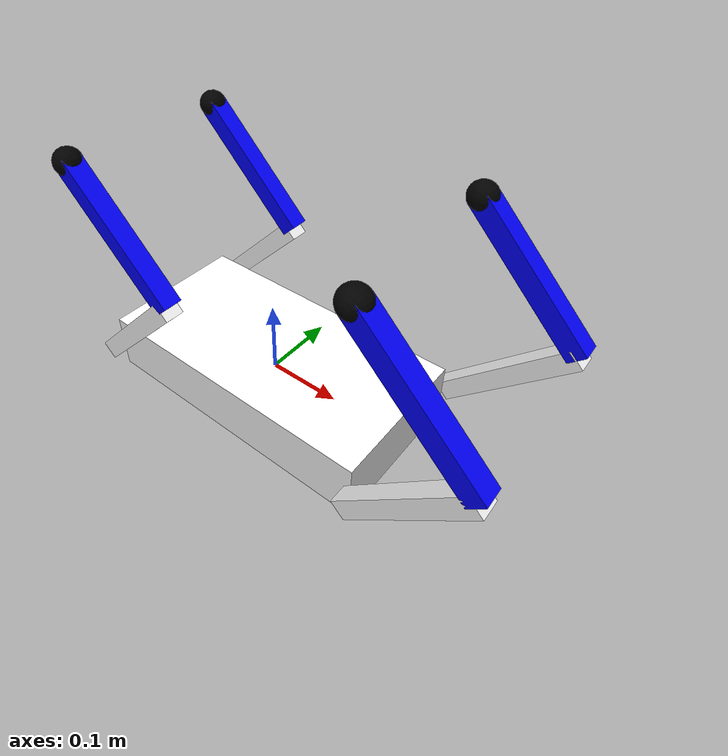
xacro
<?xml version="1.0"?>
<robot name="dog"
    xmlns:xacro="http://ros.org/wiki/xacro">

    <!-- Defining the colors used in this robot -->
    <material name="Black">
        <color rgba="0 0 0 1"/>
    </material>

    <material name="White">
        <color rgba="1 1 1 1"/>
    </material>

    <material name="Blue">
        <color rgba="0 0 1 1"/>
    </material>

    <material name="Red">
        <color rgba="1 0 0 1"/>
    </material>

    <!-- Constants -->
    <xacro:property name="M_PI" value="3.14159"/>

    <!-- body_link properties -->
    <xacro:property name="body_link_height" value="0.08" />
    <xacro:property name="body_link_width" value="0.2" />
    <xacro:property name="body_link_length" value="0.4" />
    <xacro:property name="body_h" value="0.4" />

    <!-- leg_calf properties -->
    <xacro:property name="calf_height" value="0.025" />
    <xacro:property name="calf_width" value="0.025" />
    <xacro:property name="calf_len" value="0.2" />

    <!-- leg_thigh properties -->
    <xacro:property name="thigh_height" value="0.025" />
    <xacro:property name="thigh_width" value="0.025" />
    <xacro:property name="thigh_len" value="0.2" />

    <!-- leg_shoulder properties -->
    <xacro:property name="shoulder_radius" value="0.05" />
    <xacro:property name="shoulder_len" value="0.05" />

    <!-- point_feet properties -->
    <xacro:property name="point_feet_radius" value="0.017675" />

    <!-- Gripper frame -->
    <xacro:property name="grasp_frame_radius" value="0.001" />

    <!-- Inertial matrix -->
    <xacro:macro name="inertial_matrix" params="mass">
        <inertial>
            <mass value="${mass}" />
            <inertia ixx="0.166667" ixy="0" ixz="0" iyy="0.166667" iyz="0" izz="0.166667"/>
        </inertial>
    </xacro:macro>

    <!-- base_link -->
    <link name="base_link">
        <visual>
            <origin xyz="0 0 0" rpy="0 0 0" />
            <geometry>
                <box size="${body_link_length/10} ${body_link_width/10} ${body_link_height/10}" />
            </geometry>
            <material name="White" />
        </visual>
    </link>

    <!-- body_link -->
    <link name="body_link">
        <visual>
            <origin xyz="0 0 0" rpy="0 0 0" />
            <geometry>
                <box size="${body_link_length} ${body_link_width} ${body_link_height}" />
            </geometry>
            <material name="White" />
        </visual>
        <collision>
            <origin xyz="0 0 0" rpy="0 0 0" />
            <geometry>
                <box size="${body_link_length} ${body_link_width} ${body_link_height}" />
            </geometry>
        </collision>
        <xacro:inertial_matrix mass="5" />
    </link>

    <!-- leg -->
    <xacro:macro name="leg" params="leg_name">
        <link name="${leg_name}_calf_link">
            <visual>
                <origin xyz="0 ${calf_len/2} 0" rpy="0 0 0" />
                <geometry>
                    <box size="${calf_width} ${calf_len} ${calf_height}" />
                </geometry>
                <material name="White" />
            </visual>
            <collision>
                <origin xyz="0 ${calf_len/2} 0" rpy="0 0 0" />
                <geometry>
                    <box size="${calf_width} ${calf_len} ${calf_height}" />
                </geometry>
            </collision>
            <xacro:inertial_matrix mass="0.5" />
        </link>

        <link name="${leg_name}_thigh_link">
            <visual>
                <origin xyz="0 ${thigh_len/2} 0" rpy="0 0 0" />
                <geometry>
                    <box size="${thigh_width} ${thigh_len} ${thigh_height}" />
                </geometry>
                <material name="Blue" />
            </visual>
            <collision>
                <origin xyz="0 ${thigh_len/2} 0" rpy="0 0 0" />
                <geometry>
                    <box size="${thigh_width} ${thigh_len} ${thigh_height}" />
                </geometry>
            </collision>
            <xacro:inertial_matrix mass="0.5" />
        </link>

        <link name="${leg_name}_feet_link">
            <visual>
                <origin xyz="0 ${thigh_len/2} 0" rpy="0 0 0" />
                <geometry>
                    <sphere radius="${point_feet_radius}" />
                </geometry>
                <material name="Black" />
            </visual>
            <collision>
                <origin xyz="0 ${thigh_len/2} 0" rpy="0 0 0" />
                <geometry>
                    <sphere radius="${point_feet_radius}" />
                </geometry>
            </collision>
            <inertial>
                <mass value="0.1"/>
                <origin rpy="0 0 0" xyz="0 0 0"/>
                <inertia ixx="0.1" ixy="0" ixz="0" iyy="0.1" iyz="0" izz="0.1"/>
            </inertial>
        </link>

        <joint name="${leg_name}_keen_joint" type="revolute">
            <origin xyz="0 ${calf_len} 0" rpy="0 0 1.57" />
            <parent link="${leg_name}_calf_link" />
            <child link="${leg_name}_thigh_link" />
            <axis xyz="0 0 1" />
            <limit effort="300.0" lower="-${M_PI/2}" upper="${M_PI/2}" velocity="10" />
            <dynamics damping="0" friction="0.1" />
        </joint>

        <joint name="${leg_name}_feet_joint" type="fixed">
            <origin xyz="0 ${thigh_len/2} 0" rpy="0 0 0" />
            <parent link="${leg_name}_thigh_link" />
            <child link="${leg_name}_feet_link" />
            <axis xyz="0 0 1" />
        </joint>
    </xacro:macro>

    <!-- legs -->
    <xacro:leg leg_name="left_forward_leg" />
    <xacro:leg leg_name="left_back_leg" />
    <xacro:leg leg_name="right_forward_leg" />
    <xacro:leg leg_name="right_back_leg" />

    <!-- base_body_joint -->
    <joint name="base_body_joint" type="fixed">
        <origin xyz="0 0 0" rpy="0 0 0" />
        <!--up: rpy="3.14 0 0" down: rpy="0 0 0"-->
        <parent link="base_link" />
        <child link="body_link" />
    </joint>

    <!-- leg_body_joint -->
    <joint name="left_forward_leg_body_joint" type="revolute">
        <origin xyz="${body_link_length/2} ${body_link_width/2+calf_height/2} 0" rpy="1.57 0.785 0" />
        <parent link="body_link" />
        <child link="left_forward_leg_calf_link" />
        <axis xyz="0 0 1" />
        <limit effort="300" lower="-${M_PI/2}" upper="${M_PI/2}" velocity="10" />
        <dynamics damping="0" friction="0.1" />
    </joint>

    <joint name="left_back_leg_body_joint" type="revolute">
        <origin xyz="-${body_link_length/2} ${body_link_width/2+calf_height/2} 0" rpy="1.57 0.785 0" />
        <parent link="body_link" />
        <child link="left_back_leg_calf_link" />
        <axis xyz="0 0 1" />
        <limit effort="300" lower="-${M_PI/2}" upper="${M_PI/2}" velocity="10" />
        <dynamics damping="0" friction="0.1" />
    </joint>

    <joint name="right_forward_leg_body_joint" type="revolute">
        <origin xyz="${body_link_length/2} -${body_link_width/2+calf_height/2} 0" rpy="1.57 0.785 0" />
        <parent link="body_link" />
        <child link="right_forward_leg_calf_link" />
        <axis xyz="0 0 1" />
        <limit effort="300" lower="-${M_PI/2}" upper="${M_PI/2}" velocity="10" />
        <dynamics damping="0" friction="0.1" />
    </joint>

    <joint name="right_back_leg_body_joint" type="revolute">
        <origin xyz="-${body_link_length/2} -${body_link_width/2+calf_height/2} 0" rpy="1.57 0.785 0" />
        <parent link="body_link" />
        <child link="right_back_leg_calf_link" />
        <axis xyz="0 0 1" />
        <limit effort="300" lower="-${M_PI/2}" upper="${M_PI/2}" velocity="10" />
        <dynamics damping="0" friction="0.1" />
    </joint>

    <!-- ros_control plugin -->
    <gazebo>
        <plugin name="gazebo_ros_control" filename="libgazebo_ros_control.so">
            <robotNamespace>/dog</robotNamespace>
        </plugin>
    </gazebo>

    <!-- Transmissions for ROS Control -->
    <xacro:macro name="transmission_block" params="joint_name">
        <transmission name="tran_${joint_name}">
            <type>transmission_interface/SimpleTransmission</type>
            <joint name="${joint_name}">
                <hardwareInterface>hardware_interface/PositionJointInterface</hardwareInterface>
            </joint>
            <actuator name="motor_${joint_name}">
                <hardwareInterface>hardware_interface/PositionJointInterface</hardwareInterface>
                <mechanicalReduction>1</mechanicalReduction>
            </actuator>
        </transmission>
    </xacro:macro>

    <xacro:transmission_block joint_name="left_forward_leg_body_joint"/>
    <xacro:transmission_block joint_name="left_forward_leg_keen_joint"/>

    <xacro:transmission_block joint_name="left_back_leg_body_joint"/>
    <xacro:transmission_block joint_name="left_back_leg_keen_joint"/>

    <xacro:transmission_block joint_name="right_forward_leg_body_joint"/>
    <xacro:transmission_block joint_name="right_forward_leg_keen_joint"/>

    <xacro:transmission_block joint_name="right_back_leg_body_joint"/>
    <xacro:transmission_block joint_name="right_back_leg_keen_joint"/>

</robot>
